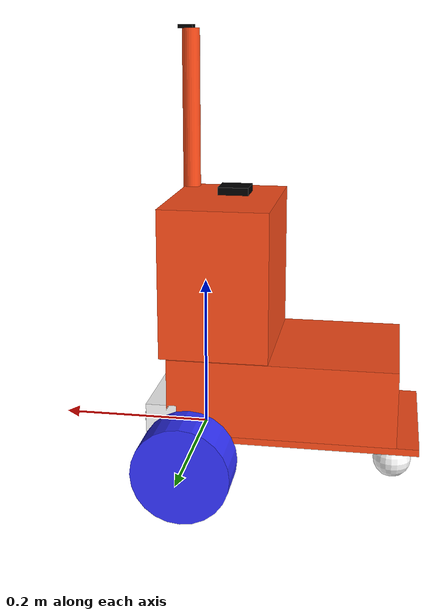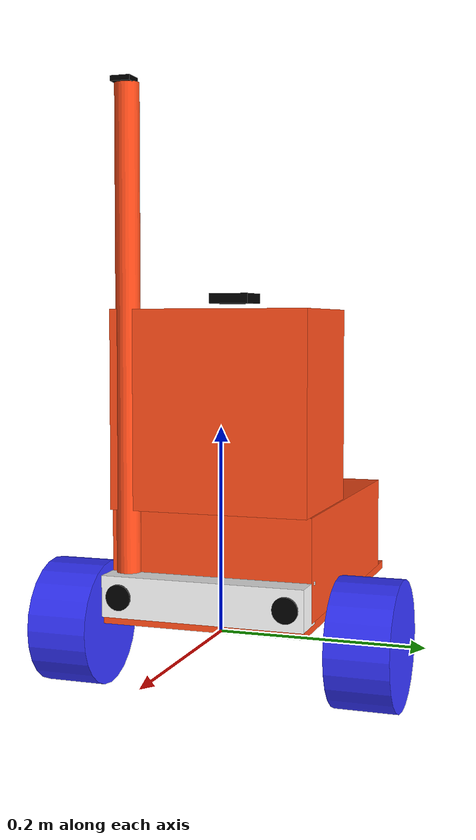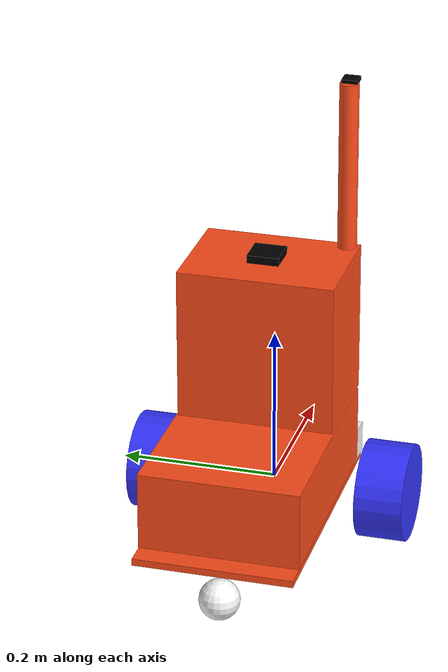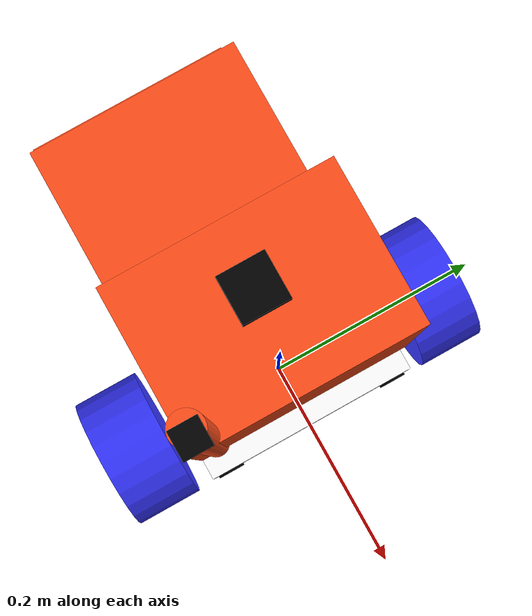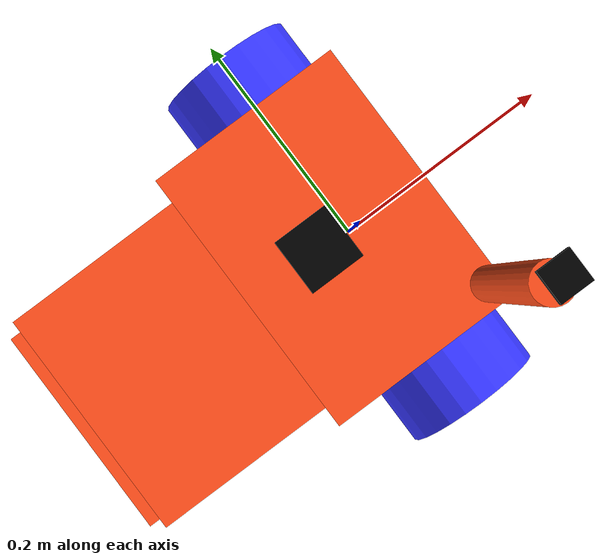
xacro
<?xml version="1.0"?>
<robot xmlns:xacro="http://www.ros.org/wiki/xacro"  name="mower2">

    <xacro:arg name="use_ros2_control" default="true"/>
    <xacro:arg name="sim_mode" default="false"/>

    <xacro:include filename="mower2_core.xacro" />

    <xacro:if value="$(arg use_ros2_control)">
        <xacro:include filename="mower2_ros2_control.xacro" />
    </xacro:if>
    <xacro:unless value="$(arg use_ros2_control)">
        <xacro:include filename="gazebo_control.xacro" />
    </xacro:unless>

    <xacro:include filename="dual_ultrasonic.xacro" />

</robot>

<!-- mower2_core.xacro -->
<robot xmlns:xacro="http://www.ros.org/wiki/xacro" >

    <xacro:include filename="inertial_macros.xacro"/>

    <xacro:property name="chassis_length" value="0.343"/>
    <xacro:property name="chassis_width" value="0.199"/>
    <xacro:property name="chassis_height" value="0.009"/>
    <xacro:property name="chassis_mass" value="1.0"/>
    <xacro:property name="wheel_radius" value="0.062"/>
    <xacro:property name="wheel_thickness" value="0.061"/>
    <xacro:property name="wheel_mass" value="0.05"/>
    <xacro:property name="wheel_offset_x" value="0.287"/>
    <xacro:property name="wheel_offset_y" value="0.1485"/>
    <xacro:property name="wheel_offset_z" value="0.013"/>
    <xacro:property name="caster_wheel_radius" value="${0.051 / 2}"/>
    <xacro:property name="caster_wheel_mass" value="0.01"/>
    <xacro:property name="caster_wheel_offset_x" value="0.032"/>
    <xacro:property name="caster_wheel_offset_z" value="${-wheel_offset_z - wheel_radius + caster_wheel_radius}"/>

    <xacro:property name="main_box_offset_x" value="0.028"/>
    <xacro:property name="main_box_offset_z" value="${chassis_height}"/>
    <xacro:property name="main_box_length" value="0.292"/>
    <xacro:property name="main_box_height" value="0.099"/>
    <xacro:property name="main_box_width" value="0.20"/>

    <xacro:property name="gps_box_offset_x" value="0.190"/>
    <xacro:property name="gps_box_offset_z" value="${chassis_height + main_box_height}"/>
    <xacro:property name="gps_box_length" value="0.140"/>
    <xacro:property name="gps_box_height" value="0.193"/>
    <xacro:property name="gps_box_width" value="0.196"/>

    <xacro:property name="imu_cylinder_length" value="0.506"/>
    <xacro:property name="imu_cylinder_radius" value="0.012"/>
    <xacro:property name="imu_cylinder_offset_x" value="${chassis_length - 0.022}"/>
    <xacro:property name="imu_cylinder_offset_y" value="${-chassis_width/2 + 0.017}"/>
    <xacro:property name="imu_cylinder_offset_z" value="${chassis_height + imu_cylinder_length/2}"/>

    <material name="white">
        <color rgba="1 1 1 1" />
    </material>

    <material name="orange">
        <color rgba="1 0.3 0.1 1"/>
    </material>

    <material name="blue">
        <color rgba="0.2 0.2 1 1"/>
    </material>

    <material name="black">
        <color rgba="0 0 0 1"/>
    </material>

    <material name="red">
        <color rgba="1 0 0 1"/>
    </material>

    <!-- BASE LINK -->

    <link name="base_link">

    </link>

    <!-- BASE_FOOTPRINT LINK -->

    <joint name="base_footprint_joint" type="fixed">
        <parent link="base_footprint"/>
        <child link="base_link"/>
        <origin xyz="0 0 0" rpy="0 0 0"/>
    </joint>

    <link name="base_footprint">
    </link>

    <!-- CHASSIS LINK -->

    <joint name="chassis_joint" type="fixed">
        <parent link="base_link"/>
        <child link="chassis"/>
        <origin xyz="${-wheel_offset_x} 0 ${wheel_offset_z}"/>
    </joint>

    <link name="chassis">
        <visual>
            <origin xyz="${chassis_length/2} 0 ${chassis_height/2}"/>
            <geometry>
                <box size="${chassis_length} ${chassis_width} ${chassis_height}"/>
            </geometry>
            <material name="orange"/>
        </visual>
        <collision>
            <origin xyz="${chassis_length/2} 0 ${chassis_height/2}"/>
            <geometry>
                <box size="${chassis_length} ${chassis_width} ${chassis_height}"/>
            </geometry>
        </collision>
        <xacro:inertial_box mass="0.5" x="${chassis_length}" y="${chassis_width}" z="${chassis_height}">
            <origin xyz="${chassis_length/2} 0 ${chassis_height/2}" rpy="0 0 0"/>
        </xacro:inertial_box>
    </link>

    <gazebo reference="chassis">
        <material>Gazebo/Orange</material>
    </gazebo>

    <!-- MAIN BOX -->

    <joint name="main_box_joint" type="fixed">
        <parent link="chassis"/>
        <child link="main_box_link"/>
        <origin xyz="${main_box_offset_x} 0 ${main_box_offset_z}"/>
    </joint>

    <link name="main_box_link">
        <visual>
            <origin xyz="${main_box_length/2} 0 ${main_box_height/2}"/>
            <geometry>
                <box size="${main_box_length} ${main_box_width} ${main_box_height}"/>
            </geometry>
            <material name="orange"/>
        </visual>
        <collision>
            <origin xyz="${main_box_length/2} 0 ${main_box_height/2}"/>
            <geometry>
                <box size="${main_box_length} ${main_box_width} ${main_box_height}"/>
            </geometry>
        </collision>
        <xacro:inertial_box mass="0.5" x="${main_box_length}" y="${main_box_width}" z="${main_box_height}">
            <origin xyz="${main_box_length/2} 0 ${main_box_height/2}" rpy="0 0 0"/>
        </xacro:inertial_box>
    </link>

    <gazebo reference="main_box_link">
        <material>Gazebo/Orange</material>
    </gazebo>

    <!-- LEFT WHEEL LINK -->

    <joint name="left_wheel_joint" type="continuous">
        <parent link="base_link"/>
        <child link="left_wheel"/>
        <origin xyz="0 ${wheel_offset_y} 0" rpy="-${pi/2} 0 0" />
        <axis xyz="0 0 1"/>
    </joint>

    <link name="left_wheel">
        <visual>
            <geometry>
                <cylinder radius="${wheel_radius}" length="${wheel_thickness}"/>
            </geometry>
            <material name="blue"/>
        </visual>
        <collision>
            <geometry>
                <sphere radius="${wheel_radius}"/>
            </geometry>
        </collision>
        <xacro:inertial_cylinder mass="${wheel_mass}" length="${wheel_thickness}" radius="${wheel_radius}">
            <origin xyz="0 0 0" rpy="0 0 0"/>
        </xacro:inertial_cylinder>
    </link>

    <gazebo reference="left_wheel">
        <material>Gazebo/Blue</material>
    </gazebo>

    <!-- RIGHT WHEEL LINK -->

    <joint name="right_wheel_joint" type="continuous">
        <parent link="base_link"/>
        <child link="right_wheel"/>
        <origin xyz="0 ${-wheel_offset_y} 0" rpy="${pi/2} 0 0" />
        <axis xyz="0 0 -1"/>
    </joint>

    <link name="right_wheel">
        <visual>
            <geometry>
                <cylinder radius="${wheel_radius}" length="${wheel_thickness}"/>
            </geometry>
            <material name="blue"/>
        </visual>
        <collision>
            <geometry>
                <sphere radius="${wheel_radius}"/>
            </geometry>
        </collision>
        <xacro:inertial_cylinder mass="${wheel_mass}" length="${wheel_thickness}" radius="${wheel_radius}">
            <origin xyz="0 0 0" rpy="0 0 0"/>
        </xacro:inertial_cylinder>
    </link>

    <gazebo reference="right_wheel">
        <material>Gazebo/Blue</material>
    </gazebo>

    <!-- CASTER WHEEL LINK -->

    <joint name="caster_wheel_joint" type="fixed">
        <parent link="chassis"/>
        <child link="caster_wheel"/>
        <origin xyz="${caster_wheel_offset_x} 0 ${caster_wheel_offset_z}"/>
    </joint>

    <link name="caster_wheel">
        <visual>
            <geometry>
                <sphere radius="${caster_wheel_radius}"/>
            </geometry>
            <material name="white"/>
        </visual>
        <collision>
            <geometry>
                <sphere radius="${caster_wheel_radius}"/>
            </geometry>
        </collision>
        <xacro:inertial_sphere mass="${caster_wheel_mass}" radius="${caster_wheel_radius}">
            <origin xyz="0 0 0" rpy="0 0 0"/>
        </xacro:inertial_sphere>
    </link>

    <gazebo reference="caster_wheel">
        <material>Gazebo/White</material>
        <mu1 value="0.001"/>
        <mu2 value="0.001"/>
    </gazebo>

    <!-- IMU -->
    <joint name="imu_joint" type="fixed">
        <parent link="base_link"/>
        <child link="imu_link"/>
        <origin xyz="0.040 -0.083 0.530" rpy="0 0 0"/>
    </joint>

    <link name="imu_link">
        <visual>
            <origin xyz="0 0 0"/>
            <geometry>
                <box size="0.02 0.02 0.005"/>
            </geometry>
            <material name="black"/>
        </visual>
    </link>

    <joint name="imu_cyl_joint" type="fixed">
        <parent link="chassis"/>
        <child link="imu_cylinder_link"/>
        <origin xyz="${imu_cylinder_offset_x} ${imu_cylinder_offset_y} ${imu_cylinder_offset_z}" rpy="0 0 0" />
    </joint>

    <link name="imu_cylinder_link">
        <visual>
            <geometry>
                <cylinder radius="${imu_cylinder_radius}" length="${imu_cylinder_length}"/>
            </geometry>
            <material name="orange"/>
        </visual>
    </link>

    <gazebo reference="imu_cylinder_link">
        <material>Gazebo/Orange</material>
    </gazebo>

    <!-- GPS -->

    <joint name="gps_joint" type="fixed">
        <parent link="base_link"/>
        <child link="gps_link"/>
        <origin xyz="-0.040 0 0.320" rpy="0 0 0"/>
    </joint>

    <link name="gps_link">
        <visual>
            <origin xyz="0 0 0.005"/>
            <geometry>
                <box size="0.04 0.04 0.01"/>
            </geometry>
            <material name="black"/>
        </visual>
    </link>

    <joint name="gps_box_joint" type="fixed">
        <parent link="chassis"/>
        <child link="gps_box_link"/>
        <origin xyz="${gps_box_offset_x} 0 ${gps_box_offset_z}"/>
    </joint>

    <link name="gps_box_link">
        <visual>
            <origin xyz="${gps_box_length/2} 0 ${gps_box_height/2}"/>
            <geometry>
                <box size="${gps_box_length} ${gps_box_width} ${gps_box_height}"/>
            </geometry>
            <material name="orange"/>
        </visual>
        <collision>
            <origin xyz="${gps_box_length/2} 0 ${gps_box_height/2}"/>
            <geometry>
                <box size="${gps_box_length} ${gps_box_width} ${gps_box_height}"/>
            </geometry>
        </collision>
        <xacro:inertial_box mass="0.05" x="${gps_box_length}" y="${gps_box_width}" z="${gps_box_height}">
            <origin xyz="${gps_box_length/2} 0 ${gps_box_height/2}" rpy="0 0 0"/>
        </xacro:inertial_box>
    </link>

    <gazebo reference="gps_box_link">
        <material>Gazebo/Orange</material>
    </gazebo>

</robot>

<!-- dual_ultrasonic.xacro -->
<robot xmlns:xacro="http://www.ros.org/wiki/xacro" >

    <joint name="range_box_joint" type="fixed">
        <parent link="base_link"/>
        <child link="range_box_link"/>
        <origin xyz="0.040 0 0.040" rpy="0 0 0"/>
    </joint>

    <link name="range_box_link">
        <visual>
            <geometry>
                <box size="0.040 0.200 0.040"/>
            </geometry>
            <material name="white"/>
        </visual>
    </link>

    <joint name="range_left_joint" type="fixed">
        <parent link="range_box_link"/>
        <child link="range_left_link"/>
        <origin xyz="0.012 0.0825 0.0" rpy="0 ${pi/2} 0"/>
    </joint>

    <joint name="range_right_joint" type="fixed">
        <parent link="range_box_link"/>
        <child link="range_right_link"/>
        <origin xyz="0.012 -0.0825 0.0" rpy="0 ${pi/2} 0"/>
    </joint>

    <link name="range_left_link">
        <visual>
            <geometry>
                <cylinder radius="0.0125" length="0.02"/>
            </geometry>
            <material name="black"/>
        </visual>
    </link>

    <link name="range_right_link">
        <visual>
            <geometry>
                <cylinder radius="0.0125" length="0.02"/>
            </geometry>
            <material name="black"/>
        </visual>
    </link>

</robot>
